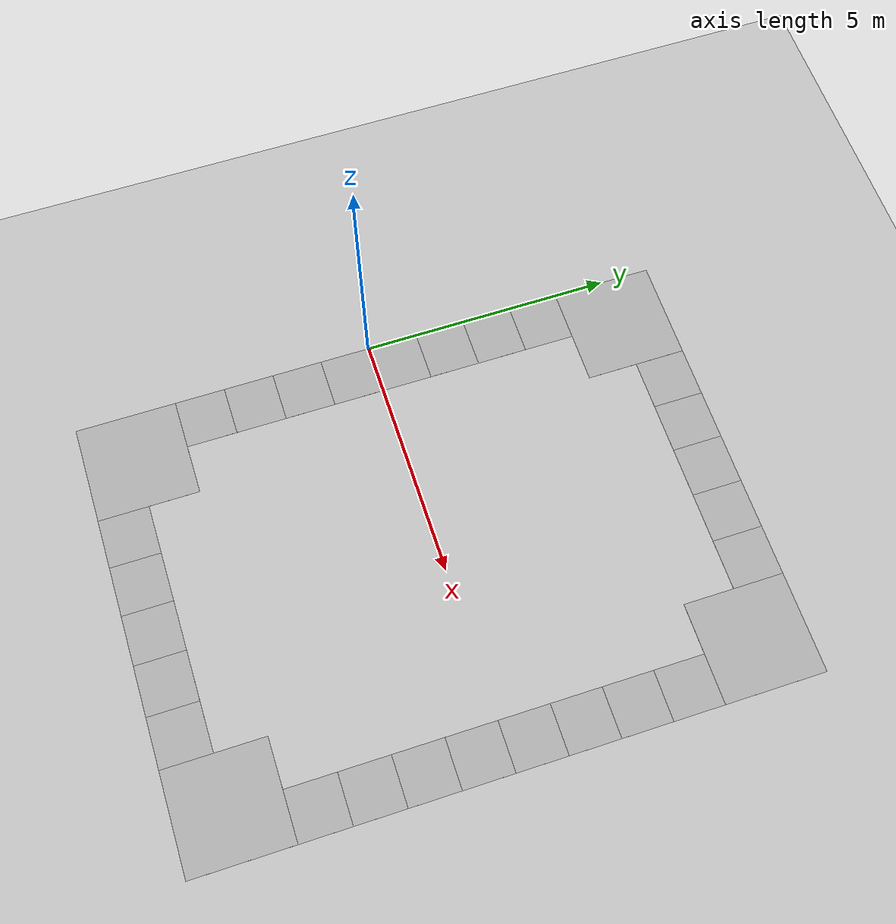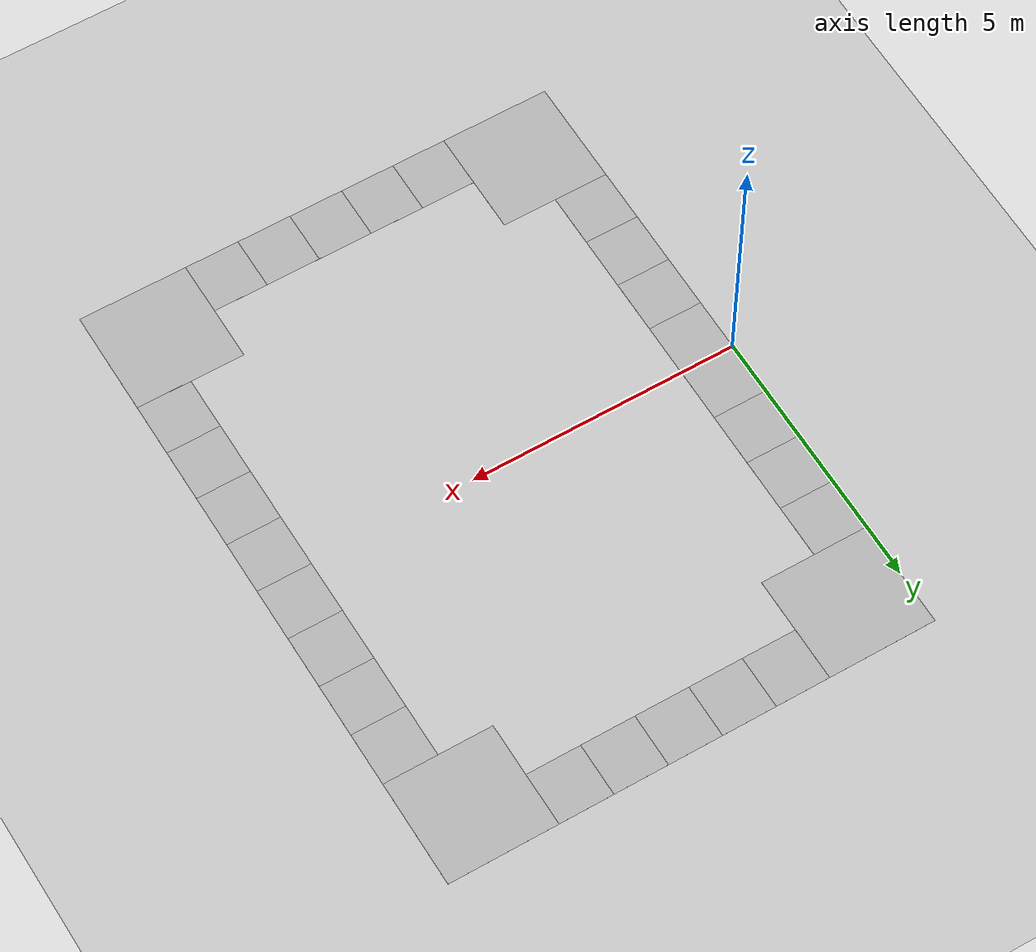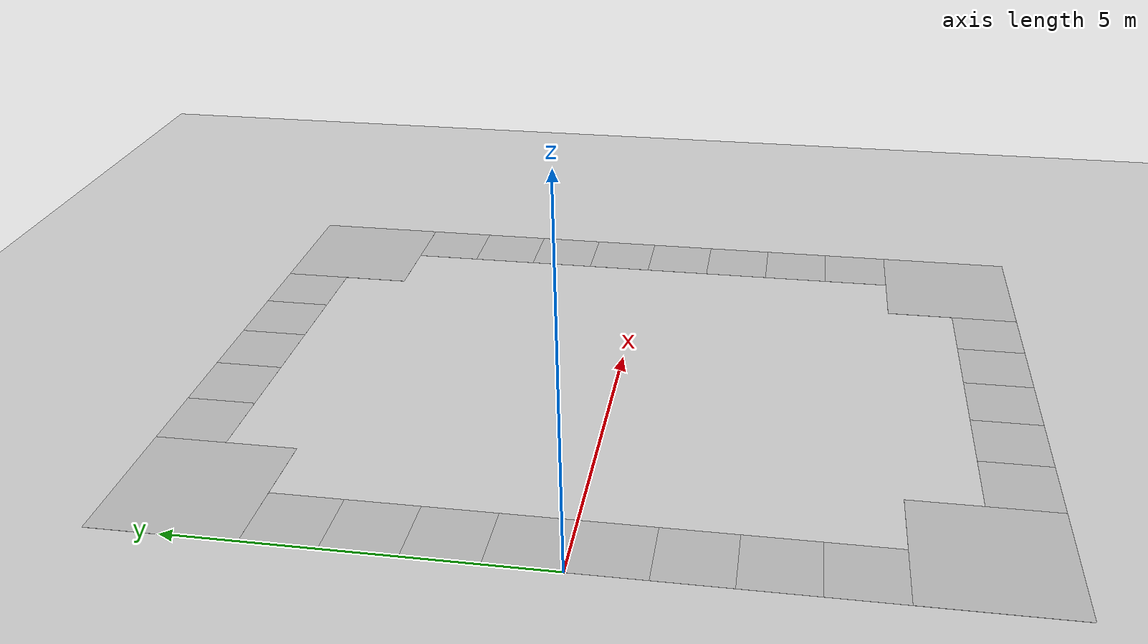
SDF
<?xml version="1.0" ?>
<sdf version="1.5">
  <world name="default">

    <include>
      <uri>model://ground_plane</uri>
      <pose> 0 0 -.0001 0 0 0 </pose>
    </include>

    <include>
      <uri>model://sun</uri>
    </include>

    <include>
      <uri>model://straight_road</uri>
      <pose>.5 .5 0 0 0 0 </pose>
    </include>

    <include>
      <uri>model://straight_road</uri>
      <pose>.5 -.5 0 0 0 0 </pose>
    </include>

    <include>
      <uri>model://straight_road</uri>
      <pose>.5 1.5 0 0 0 0 </pose>
    </include>

    <include>
      <uri>model://straight_road</uri>
      <pose>.5 -1.5 0 0 0 0 </pose>
    </include>

    <include>
      <uri>model://straight_road</uri>
      <pose>.5 -2.5 0 0 0 0 </pose>
    </include>

    <include>
      <uri>model://straight_road</uri>
      <pose>.5 2.5 0 0 0 0 </pose>
    </include>

    <include>
      <uri>model://straight_road</uri>
      <pose>.5 -3.5 0 0 0 0 </pose>
    </include>

    <include>
      <uri>model://straight_road</uri>
      <pose>.5 3.5 0 0 0 0 </pose>
    </include>

    <include>
      <uri>model://curved_road</uri>
      <pose> 1 5 0 0 0 0 </pose>
  	</include>

  	<include>
      <uri>model://straight_road</uri>
      <pose> 2.5 5.5 0 0 0 -1.570796327 </pose>
    </include>

    <include>
      <uri>model://straight_road</uri>
      <pose>3.5 5.5 0 0 0 -1.570796327 </pose>
    </include>

    <include>
      <uri>model://straight_road</uri>
      <pose>4.5 5.5 0 0 0 -1.570796327 </pose>
    </include>

    <include>
      <uri>model://straight_road</uri>
      <pose>5.5 5.5 0 0 0 -1.570796327 </pose>
    </include>

    <include>
      <uri>model://straight_road</uri>
      <pose>6.5 5.5 0 0 0 -1.570796327 </pose>
    </include>

    <include>
      <uri>model://curved_road</uri>
      <pose> 8 5 0 0 0 -1.570796327 </pose>
  	</include>

    <include>
      <uri>model://straight_road</uri>
      <pose>2.5 -5.5 0 0 0 1.570796327 </pose>
    </include>

    <include>
      <uri>model://straight_road</uri>
      <pose>3.5 -5.5 0 0 0 1.570796327 </pose>
    </include>

    <include>
      <uri>model://straight_road</uri>
      <pose>4.5 -5.5 0 0 0 1.570796327 </pose>
    </include>

    <include>
      <uri>model://straight_road</uri>
      <pose>5.5 -5.5 0 0 0 1.570796327 </pose>
    </include>

    <include>
      <uri>model://straight_road</uri>
      <pose>6.5 -5.5 0 0 0 1.570796327 </pose>
    </include>

    <include>
      <uri>model://curved_road</uri>
      <pose> 8 -5 0 0 0 3.141592654 </pose>
  	</include>

    <include>
      <uri>model://straight_road</uri>
      <pose>8.5 .5 0 0 0 3.141592654 </pose>
    </include>

    <include>
      <uri>model://straight_road</uri>
      <pose>8.5 1.5 0 0 0 3.141592654 </pose>
    </include>

    <include>
      <uri>model://straight_road</uri>
      <pose>8.5 2.5 0 0 0 3.141592654 </pose>
    </include>

    <include>
      <uri>model://straight_road</uri>
      <pose>8.5 3.5 0 0 0 3.141592654 </pose>
    </include>

    <include>
      <uri>model://straight_road</uri>
      <pose>8.5 -.5 0 0 0 3.141592654 </pose>
    </include>

    <include>
      <uri>model://straight_road</uri>
      <pose>8.5 -1.5 0 0 0 3.141592654 </pose>
    </include>

    <include>
      <uri>model://straight_road</uri>
      <pose>8.5 -2.5 0 0 0 3.141592654 </pose>
    </include>

    <include>
      <uri>model://straight_road</uri>
      <pose>8.5 -3.5 0 0 0 3.141592654 </pose>
    </include>

      <include>
      <uri>model://curved_road</uri>
      <pose> 1 -5 0 0 0 1.570796327 </pose>
  	</include>

  </world>
</sdf>

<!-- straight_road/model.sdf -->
<sdf version="1.4">
	<model name="straight_road">
		<static>true</static>
		<link name="link">
			<collision name="collision">
				<geometry>
					<plane>
						<normal>0 0 1</normal>
						<size>1 1</size>
					</plane>
				</geometry>
				<surface>
					<friction>
						<ode>
							<mu>100</mu>
							<mu2>50</mu2>
						</ode>
					</friction>
				</surface>
			</collision>
			<visual name="visual">
				<cast_shadows>false</cast_shadows>
				<geometry>
					<plane>
						<normal>0 0 1</normal>
						<size>1 1</size>
					</plane>
				</geometry>
				<material>
					<script>
						<uri>model://straight_road/materials/scripts</uri>
						<uri>model://straight_road/materials/textures</uri>
						<name>straight_road/Image</name>
					</script>
				</material>
			</visual>
		</link>
	</model>
</sdf>

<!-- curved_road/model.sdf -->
<sdf version="1.4">
	<model name="curved_road">
		<static>true</static>
		<link name="link">
			<collision name="collision">
				<geometry>
					<plane>
						<normal>0 0 1</normal>
						<size>2 2</size>
					</plane>
				</geometry>
				<surface>
					<friction>
						<ode>
							<mu>100</mu>
							<mu2>50</mu2>
						</ode>
					</friction>
				</surface>
			</collision>
			<visual name="visual">
				<cast_shadows>false</cast_shadows>
				<geometry>
					<plane>
						<normal>0 0 1</normal>
						<size>2 2</size>
					</plane>
				</geometry>
				<material>
					<script>
						<uri>model://curved_road/materials/scripts</uri>
						<uri>model://curved_road/materials/textures</uri>
						<name>curved_road/Image</name>
					</script>
				</material>
			</visual>
		</link>
	</model>
</sdf>
